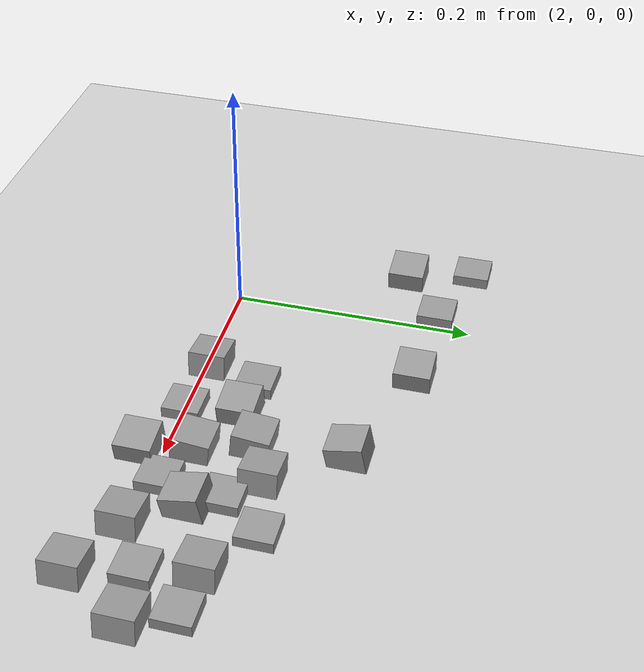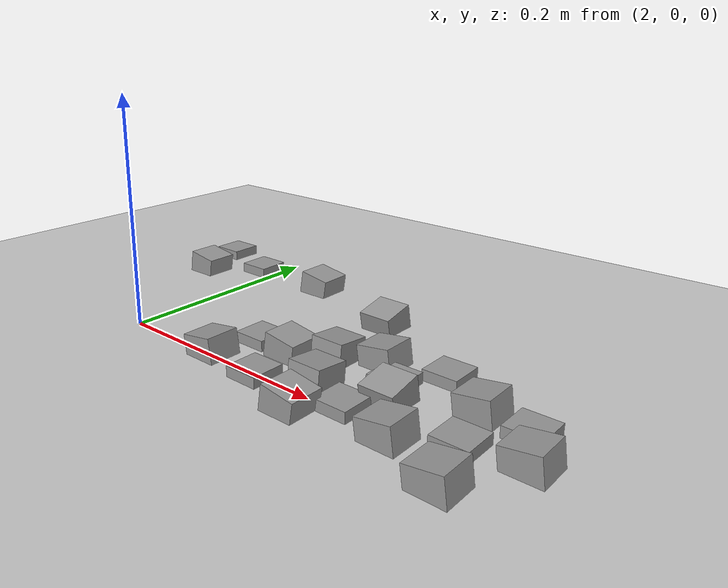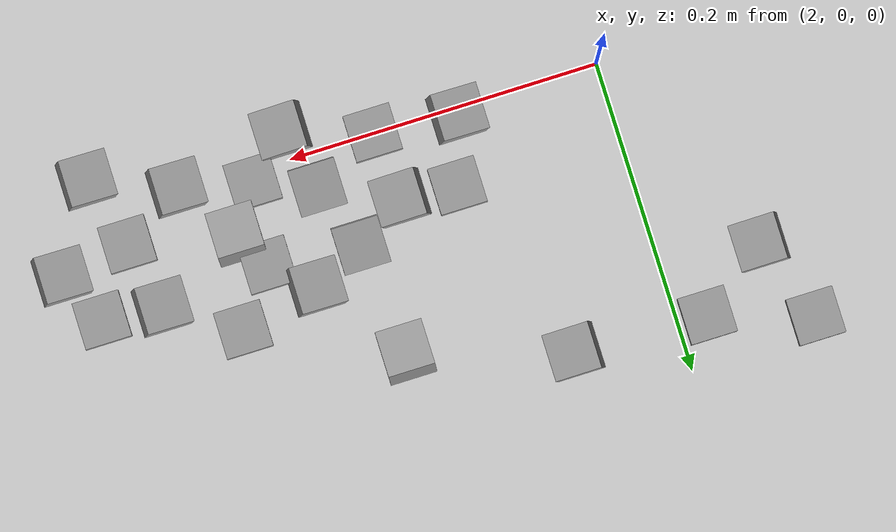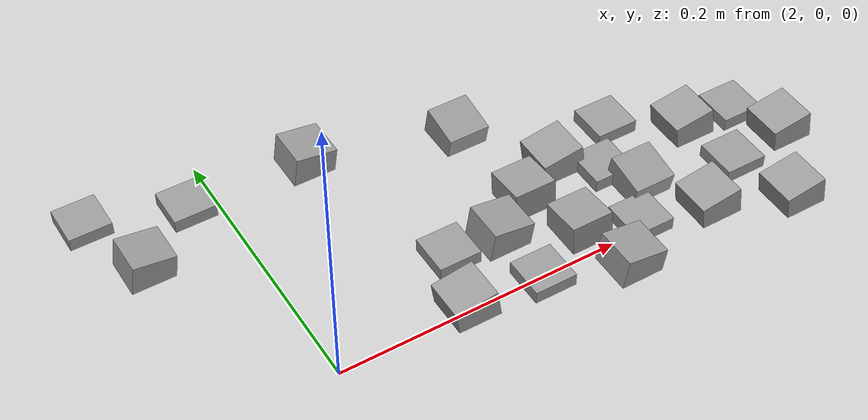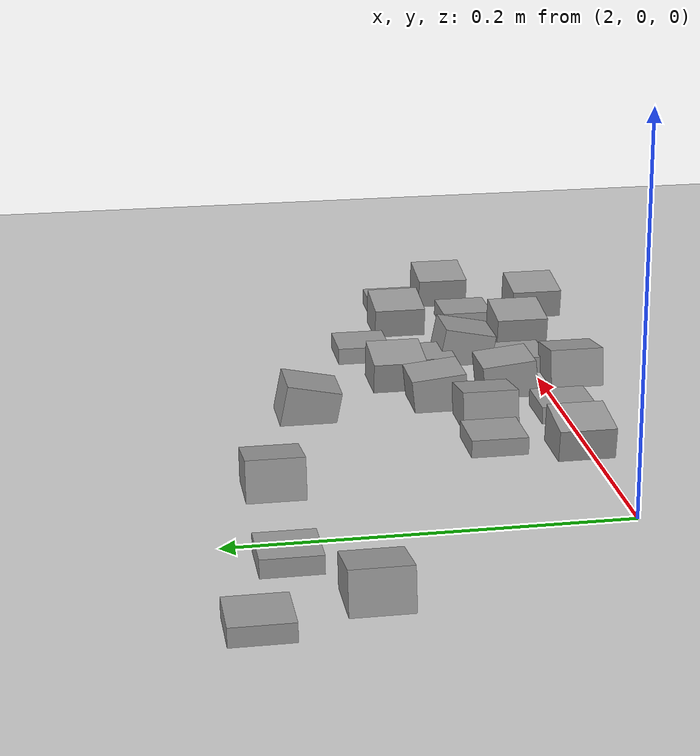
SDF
<sdf version="1.7">
 <world name="default">
  <model name="ground_plane">
   <static>1</static>
   <link name="link">
    <collision name="collision">
     <geometry><plane><normal>0 0 1</normal><size>100 100</size></plane></geometry>
     <surface><friction><ode><mu>100</mu><mu2>50</mu2></ode></friction></surface>
    </collision>
    <visual name="visual">
     <cast_shadows>0</cast_shadows>
     <geometry><plane><normal>0 0 1</normal><size>100 100</size></plane></geometry>
     <material>
      <script><uri>file://media/materials/scripts/gazebo.material</uri><name>Gazebo/Grey</name></script>
     </material>
    </visual>
   </link>
  </model>
  <model name="stone_road_3">
   <link name="link_0_clone_12">
    <inertial>
     <mass>1</mass>
     <inertia>
      <ixx>0.166667</ixx>
      <ixy>0</ixy>
      <ixz>0</ixz>
      <iyy>0.166667</iyy>
      <iyz>0</iyz>
      <izz>0.166667</izz>
     </inertia>
    </inertial>
    <pose>0.142624 -0.262715 0.003778 0.2 -0 0</pose>
    <kinematic>1</kinematic>
    <visual name="visual">
     <geometry><box><size>0.03 0.03 0.03</size></box></geometry>
     <material>
      <lighting>1</lighting>
      <script><uri>file://media/materials/scripts/gazebo.material</uri><name>Gazebo/Grey</name></script>
      <shader type="pixel"><normal_map>__default__</normal_map></shader>
      <ambient>0.3 0.3 0.3 1</ambient>
      <diffuse>0.7 0.7 0.7 1</diffuse>
      <specular>0.01 0.01 0.01 1</specular>
      <emissive>0 0 0 1</emissive>
     </material>
    </visual>
    <collision name="collision">
     <geometry><box><size>0.03 0.03 0.03</size></box></geometry>
     <surface>
      <friction>
       <ode><mu>1</mu><mu2>1</mu2><fdir1>0 0 0</fdir1><slip1>0</slip1><slip2>0</slip2></ode>
       <torsional>
        <coefficient>1</coefficient>
        <patch_radius>0</patch_radius>
        <surface_radius>0</surface_radius>
        <use_patch_radius>1</use_patch_radius>
        <ode><slip>0</slip></ode>
       </torsional>
      </friction>
      <bounce><restitution_coefficient>0</restitution_coefficient><threshold>1e+06</threshold></bounce>
      <contact>
       <collide_without_contact>0</collide_without_contact>
       <collide_without_contact_bitmask>1</collide_without_contact_bitmask>
       <collide_bitmask>1</collide_bitmask>
       <ode>
        <soft_cfm>0</soft_cfm>
        <soft_erp>0.2</soft_erp>
        <kp>1e+13</kp>
        <kd>1</kd>
        <max_vel>0.01</max_vel>
        <min_depth>0</min_depth>
       </ode>
       <bullet>
        <split_impulse>1</split_impulse>
        <split_impulse_penetration_threshold>-0.01</split_impulse_penetration_threshold>
        <soft_cfm>0</soft_cfm>
        <soft_erp>0.2</soft_erp>
        <kp>1e+13</kp>
        <kd>1</kd>
       </bullet>
      </contact>
     </surface>
    </collision>
   </link>
   <link name="link_0_clone_2_clone_2_clone_13_clone_clone_16_clone_28">
    <inertial>
     <mass>1</mass>
     <inertia>
      <ixx>0.166667</ixx>
      <ixy>0</ixy>
      <ixz>0</ixz>
      <iyy>0.166667</iyy>
      <iyz>0</iyz>
      <izz>0.166667</izz>
     </inertia>
    </inertial>
    <pose>-0.10708 -0.209042 -0.006222 0 -0 0</pose>
    <kinematic>1</kinematic>
    <visual name="visual">
     <geometry><box><size>0.03 0.03 0.03</size></box></geometry>
     <material>
      <lighting>1</lighting>
      <script><uri>file://media/materials/scripts/gazebo.material</uri><name>Gazebo/Grey</name></script>
      <shader type="pixel"><normal_map>__default__</normal_map></shader>
      <ambient>0.3 0.3 0.3 1</ambient>
      <diffuse>0.7 0.7 0.7 1</diffuse>
      <specular>0.01 0.01 0.01 1</specular>
      <emissive>0 0 0 1</emissive>
     </material>
    </visual>
    <collision name="collision">
     <geometry><box><size>0.03 0.03 0.03</size></box></geometry>
     <surface>
      <friction>
       <ode><mu>1</mu><mu2>1</mu2><fdir1>0 0 0</fdir1><slip1>0</slip1><slip2>0</slip2></ode>
       <torsional>
        <coefficient>1</coefficient>
        <patch_radius>0</patch_radius>
        <surface_radius>0</surface_radius>
        <use_patch_radius>1</use_patch_radius>
        <ode><slip>0</slip></ode>
       </torsional>
      </friction>
      <bounce><restitution_coefficient>0</restitution_coefficient><threshold>1e+06</threshold></bounce>
      <contact>
       <collide_without_contact>0</collide_without_contact>
       <collide_without_contact_bitmask>1</collide_without_contact_bitmask>
       <collide_bitmask>1</collide_bitmask>
       <ode>
        <soft_cfm>0</soft_cfm>
        <soft_erp>0.2</soft_erp>
        <kp>1e+13</kp>
        <kd>1</kd>
        <max_vel>0.01</max_vel>
        <min_depth>0</min_depth>
       </ode>
       <bullet>
        <split_impulse>1</split_impulse>
        <split_impulse_penetration_threshold>-0.01</split_impulse_penetration_threshold>
        <soft_cfm>0</soft_cfm>
        <soft_erp>0.2</soft_erp>
        <kp>1e+13</kp>
        <kd>1</kd>
       </bullet>
      </contact>
     </surface>
    </collision>
   </link>
   <link name="link_0_clone_2_clone_2_clone_13_clone_clone_16_clone_29">
    <inertial>
     <mass>1</mass>
     <inertia>
      <ixx>0.166667</ixx>
      <ixy>0</ixy>
      <ixz>0</ixz>
      <iyy>0.166667</iyy>
      <iyz>0</iyz>
      <izz>0.166667</izz>
     </inertia>
    </inertial>
    <pose>-0.042964 -0.229632 -0.006222 0 -0 0</pose>
    <kinematic>1</kinematic>
    <visual name="visual">
     <geometry><box><size>0.03 0.03 0.03</size></box></geometry>
     <material>
      <lighting>1</lighting>
      <script><uri>file://media/materials/scripts/gazebo.material</uri><name>Gazebo/Grey</name></script>
      <shader type="pixel"><normal_map>__default__</normal_map></shader>
      <ambient>0.3 0.3 0.3 1</ambient>
      <diffuse>0.7 0.7 0.7 1</diffuse>
      <specular>0.01 0.01 0.01 1</specular>
      <emissive>0 0 0 1</emissive>
     </material>
    </visual>
    <collision name="collision">
     <geometry><box><size>0.03 0.03 0.03</size></box></geometry>
     <surface>
      <friction>
       <ode><mu>1</mu><mu2>1</mu2><fdir1>0 0 0</fdir1><slip1>0</slip1><slip2>0</slip2></ode>
       <torsional>
        <coefficient>1</coefficient>
        <patch_radius>0</patch_radius>
        <surface_radius>0</surface_radius>
        <use_patch_radius>1</use_patch_radius>
        <ode><slip>0</slip></ode>
       </torsional>
      </friction>
      <bounce><restitution_coefficient>0</restitution_coefficient><threshold>1e+06</threshold></bounce>
      <contact>
       <collide_without_contact>0</collide_without_contact>
       <collide_without_contact_bitmask>1</collide_without_contact_bitmask>
       <collide_bitmask>1</collide_bitmask>
       <ode>
        <soft_cfm>0</soft_cfm>
        <soft_erp>0.2</soft_erp>
        <kp>1e+13</kp>
        <kd>1</kd>
        <max_vel>0.01</max_vel>
        <min_depth>0</min_depth>
       </ode>
       <bullet>
        <split_impulse>1</split_impulse>
        <split_impulse_penetration_threshold>-0.01</split_impulse_penetration_threshold>
        <soft_cfm>0</soft_cfm>
        <soft_erp>0.2</soft_erp>
        <kp>1e+13</kp>
        <kd>1</kd>
       </bullet>
      </contact>
     </surface>
    </collision>
   </link>
   <link name="link_0_clone_2_clone_6">
    <inertial>
     <mass>1</mass>
     <inertia>
      <ixx>0.166667</ixx>
      <ixy>0</ixy>
      <ixz>0</ixz>
      <iyy>0.166667</iyy>
      <iyz>0</iyz>
      <izz>0.166667</izz>
     </inertia>
    </inertial>
    <pose>-0.087859 -0.263184 0.003778 0 0.15 0</pose>
    <kinematic>1</kinematic>
    <visual name="visual">
     <geometry><box><size>0.03 0.03 0.03</size></box></geometry>
     <material>
      <lighting>1</lighting>
      <script><uri>file://media/materials/scripts/gazebo.material</uri><name>Gazebo/Grey</name></script>
      <shader type="pixel"><normal_map>__default__</normal_map></shader>
      <ambient>0.3 0.3 0.3 1</ambient>
      <diffuse>0.7 0.7 0.7 1</diffuse>
      <specular>0.01 0.01 0.01 1</specular>
      <emissive>0 0 0 1</emissive>
     </material>
    </visual>
    <collision name="collision">
     <geometry><box><size>0.03 0.03 0.03</size></box></geometry>
     <surface>
      <friction>
       <ode><mu>1</mu><mu2>1</mu2><fdir1>0 0 0</fdir1><slip1>0</slip1><slip2>0</slip2></ode>
       <torsional>
        <coefficient>1</coefficient>
        <patch_radius>0</patch_radius>
        <surface_radius>0</surface_radius>
        <use_patch_radius>1</use_patch_radius>
        <ode><slip>0</slip></ode>
       </torsional>
      </friction>
      <bounce><restitution_coefficient>0</restitution_coefficient><threshold>1e+06</threshold></bounce>
      <contact>
       <collide_without_contact>0</collide_without_contact>
       <collide_without_contact_bitmask>1</collide_without_contact_bitmask>
       <collide_bitmask>1</collide_bitmask>
       <ode>
        <soft_cfm>0</soft_cfm>
        <soft_erp>0.2</soft_erp>
        <kp>1e+13</kp>
        <kd>1</kd>
        <max_vel>0.01</max_vel>
        <min_depth>0</min_depth>
       </ode>
       <bullet>
        <split_impulse>1</split_impulse>
        <split_impulse_penetration_threshold>-0.01</split_impulse_penetration_threshold>
        <soft_cfm>0</soft_cfm>
        <soft_erp>0.2</soft_erp>
        <kp>1e+13</kp>
        <kd>1</kd>
       </bullet>
      </contact>
     </surface>
    </collision>
   </link>
   <link name="link_0_clone_2_clone_7">
    <inertial>
     <mass>1</mass>
     <inertia>
      <ixx>0.166667</ixx>
      <ixy>0</ixy>
      <ixz>0</ixz>
      <iyy>0.166667</iyy>
      <iyz>0</iyz>
      <izz>0.166667</izz>
     </inertia>
    </inertial>
    <pose>0.04255 -0.232691 0.003778 0 0.15 0</pose>
    <kinematic>1</kinematic>
    <visual name="visual">
     <geometry><box><size>0.03 0.03 0.03</size></box></geometry>
     <material>
      <lighting>1</lighting>
      <script><uri>file://media/materials/scripts/gazebo.material</uri><name>Gazebo/Grey</name></script>
      <shader type="pixel"><normal_map>__default__</normal_map></shader>
      <ambient>0.3 0.3 0.3 1</ambient>
      <diffuse>0.7 0.7 0.7 1</diffuse>
      <specular>0.01 0.01 0.01 1</specular>
      <emissive>0 0 0 1</emissive>
     </material>
    </visual>
    <collision name="collision">
     <geometry><box><size>0.03 0.03 0.03</size></box></geometry>
     <surface>
      <friction>
       <ode><mu>1</mu><mu2>1</mu2><fdir1>0 0 0</fdir1><slip1>0</slip1><slip2>0</slip2></ode>
       <torsional>
        <coefficient>1</coefficient>
        <patch_radius>0</patch_radius>
        <surface_radius>0</surface_radius>
        <use_patch_radius>1</use_patch_radius>
        <ode><slip>0</slip></ode>
       </torsional>
      </friction>
      <bounce><restitution_coefficient>0</restitution_coefficient><threshold>1e+06</threshold></bounce>
      <contact>
       <collide_without_contact>0</collide_without_contact>
       <collide_without_contact_bitmask>1</collide_without_contact_bitmask>
       <collide_bitmask>1</collide_bitmask>
       <ode>
        <soft_cfm>0</soft_cfm>
        <soft_erp>0.2</soft_erp>
        <kp>1e+13</kp>
        <kd>1</kd>
        <max_vel>0.01</max_vel>
        <min_depth>0</min_depth>
       </ode>
       <bullet>
        <split_impulse>1</split_impulse>
        <split_impulse_penetration_threshold>-0.01</split_impulse_penetration_threshold>
        <soft_cfm>0</soft_cfm>
        <soft_erp>0.2</soft_erp>
        <kp>1e+13</kp>
        <kd>1</kd>
       </bullet>
      </contact>
     </surface>
    </collision>
   </link>
   <static>0</static>
   <pose>2.02404 0.399702 -0 0 -0 0</pose>
  </model>
  <model name="stone_road_4">
   <link name="link_0_clone_10">
    <inertial>
     <mass>1</mass>
     <inertia>
      <ixx>0.166667</ixx>
      <ixy>0</ixy>
      <ixz>0</ixz>
      <iyy>0.166667</iyy>
      <iyz>0</iyz>
      <izz>0.166667</izz>
     </inertia>
    </inertial>
    <pose>-0.01295 0.17123 0.003778 0.2 -0 0</pose>
    <kinematic>1</kinematic>
    <visual name="visual">
     <geometry><box><size>0.03 0.03 0.03</size></box></geometry>
     <material>
      <lighting>1</lighting>
      <script><uri>file://media/materials/scripts/gazebo.material</uri><name>Gazebo/Grey</name></script>
      <shader type="pixel"><normal_map>__default__</normal_map></shader>
      <ambient>0.3 0.3 0.3 1</ambient>
      <diffuse>0.7 0.7 0.7 1</diffuse>
      <specular>0.01 0.01 0.01 1</specular>
      <emissive>0 0 0 1</emissive>
     </material>
    </visual>
    <collision name="collision">
     <geometry><box><size>0.03 0.03 0.03</size></box></geometry>
     <surface>
      <friction>
       <ode><mu>1</mu><mu2>1</mu2><fdir1>0 0 0</fdir1><slip1>0</slip1><slip2>0</slip2></ode>
       <torsional>
        <coefficient>1</coefficient>
        <patch_radius>0</patch_radius>
        <surface_radius>0</surface_radius>
        <use_patch_radius>1</use_patch_radius>
        <ode><slip>0</slip></ode>
       </torsional>
      </friction>
      <bounce><restitution_coefficient>0</restitution_coefficient><threshold>1e+06</threshold></bounce>
      <contact>
       <collide_without_contact>0</collide_without_contact>
       <collide_without_contact_bitmask>1</collide_without_contact_bitmask>
       <collide_bitmask>1</collide_bitmask>
       <ode>
        <soft_cfm>0</soft_cfm>
        <soft_erp>0.2</soft_erp>
        <kp>1e+13</kp>
        <kd>1</kd>
        <max_vel>0.01</max_vel>
        <min_depth>0</min_depth>
       </ode>
       <bullet>
        <split_impulse>1</split_impulse>
        <split_impulse_penetration_threshold>-0.01</split_impulse_penetration_threshold>
        <soft_cfm>0</soft_cfm>
        <soft_erp>0.2</soft_erp>
        <kp>1e+13</kp>
        <kd>1</kd>
       </bullet>
      </contact>
     </surface>
    </collision>
   </link>
   <link name="link_0_clone_2_clone_2">
    <inertial>
     <mass>1</mass>
     <inertia>
      <ixx>0.166667</ixx>
      <ixy>0</ixy>
      <ixz>0</ixz>
      <iyy>0.166667</iyy>
      <iyz>0</iyz>
      <izz>0.166667</izz>
     </inertia>
    </inertial>
    <pose>0.066563 0.110568 0.003778 0 -0.15 0</pose>
    <kinematic>1</kinematic>
    <visual name="visual">
     <geometry><box><size>0.03 0.03 0.03</size></box></geometry>
     <material>
      <lighting>1</lighting>
      <script><uri>file://media/materials/scripts/gazebo.material</uri><name>Gazebo/Grey</name></script>
      <shader type="pixel"><normal_map>__default__</normal_map></shader>
      <ambient>0.3 0.3 0.3 1</ambient>
      <diffuse>0.7 0.7 0.7 1</diffuse>
      <specular>0.01 0.01 0.01 1</specular>
      <emissive>0 0 0 1</emissive>
     </material>
    </visual>
    <collision name="collision">
     <geometry><box><size>0.03 0.03 0.03</size></box></geometry>
     <surface>
      <friction>
       <ode><mu>1</mu><mu2>1</mu2><fdir1>0 0 0</fdir1><slip1>0</slip1><slip2>0</slip2></ode>
       <torsional>
        <coefficient>1</coefficient>
        <patch_radius>0</patch_radius>
        <surface_radius>0</surface_radius>
        <use_patch_radius>1</use_patch_radius>
        <ode><slip>0</slip></ode>
       </torsional>
      </friction>
      <bounce><restitution_coefficient>0</restitution_coefficient><threshold>1e+06</threshold></bounce>
      <contact>
       <collide_without_contact>0</collide_without_contact>
       <collide_without_contact_bitmask>1</collide_without_contact_bitmask>
       <collide_bitmask>1</collide_bitmask>
       <ode>
        <soft_cfm>0</soft_cfm>
        <soft_erp>0.2</soft_erp>
        <kp>1e+13</kp>
        <kd>1</kd>
        <max_vel>0.01</max_vel>
        <min_depth>0</min_depth>
       </ode>
       <bullet>
        <split_impulse>1</split_impulse>
        <split_impulse_penetration_threshold>-0.01</split_impulse_penetration_threshold>
        <soft_cfm>0</soft_cfm>
        <soft_erp>0.2</soft_erp>
        <kp>1e+13</kp>
        <kd>1</kd>
       </bullet>
      </contact>
     </surface>
    </collision>
   </link>
   <link name="link_0_clone_2_clone_2_clone_10">
    <inertial>
     <mass>1</mass>
     <inertia>
      <ixx>0.166667</ixx>
      <ixy>0</ixy>
      <ixz>0</ixz>
      <iyy>0.166667</iyy>
      <iyz>0</iyz>
      <izz>0.166667</izz>
     </inertia>
    </inertial>
    <pose>0.09869 0.163436 0.003778 0 -0.15 0</pose>
    <kinematic>1</kinematic>
    <visual name="visual">
     <geometry><box><size>0.03 0.03 0.03</size></box></geometry>
     <material>
      <lighting>1</lighting>
      <script><uri>file://media/materials/scripts/gazebo.material</uri><name>Gazebo/Grey</name></script>
      <shader type="pixel"><normal_map>__default__</normal_map></shader>
      <ambient>0.3 0.3 0.3 1</ambient>
      <diffuse>0.7 0.7 0.7 1</diffuse>
      <specular>0.01 0.01 0.01 1</specular>
      <emissive>0 0 0 1</emissive>
     </material>
    </visual>
    <collision name="collision">
     <geometry><box><size>0.03 0.03 0.03</size></box></geometry>
     <surface>
      <friction>
       <ode><mu>1</mu><mu2>1</mu2><fdir1>0 0 0</fdir1><slip1>0</slip1><slip2>0</slip2></ode>
       <torsional>
        <coefficient>1</coefficient>
        <patch_radius>0</patch_radius>
        <surface_radius>0</surface_radius>
        <use_patch_radius>1</use_patch_radius>
        <ode><slip>0</slip></ode>
       </torsional>
      </friction>
      <bounce><restitution_coefficient>0</restitution_coefficient><threshold>1e+06</threshold></bounce>
      <contact>
       <collide_without_contact>0</collide_without_contact>
       <collide_without_contact_bitmask>1</collide_without_contact_bitmask>
       <collide_bitmask>1</collide_bitmask>
       <ode>
        <soft_cfm>0</soft_cfm>
        <soft_erp>0.2</soft_erp>
        <kp>1e+13</kp>
        <kd>1</kd>
        <max_vel>0.01</max_vel>
        <min_depth>0</min_depth>
       </ode>
       <bullet>
        <split_impulse>1</split_impulse>
        <split_impulse_penetration_threshold>-0.01</split_impulse_penetration_threshold>
        <soft_cfm>0</soft_cfm>
        <soft_erp>0.2</soft_erp>
        <kp>1e+13</kp>
        <kd>1</kd>
       </bullet>
      </contact>
     </surface>
    </collision>
   </link>
   <link name="link_0_clone_2_clone_2_clone_11">
    <inertial>
     <mass>1</mass>
     <inertia>
      <ixx>0.166667</ixx>
      <ixy>0</ixy>
      <ixz>0</ixz>
      <iyy>0.166667</iyy>
      <iyz>0</iyz>
      <izz>0.166667</izz>
     </inertia>
    </inertial>
    <pose>-0.050382 0.216558 0.003778 0 -0.15 0</pose>
    <kinematic>1</kinematic>
    <visual name="visual">
     <geometry><box><size>0.03 0.03 0.03</size></box></geometry>
     <material>
      <lighting>1</lighting>
      <script><uri>file://media/materials/scripts/gazebo.material</uri><name>Gazebo/Grey</name></script>
      <shader type="pixel"><normal_map>__default__</normal_map></shader>
      <ambient>0.3 0.3 0.3 1</ambient>
      <diffuse>0.7 0.7 0.7 1</diffuse>
      <specular>0.01 0.01 0.01 1</specular>
      <emissive>0 0 0 1</emissive>
     </material>
    </visual>
    <collision name="collision">
     <geometry><box><size>0.03 0.03 0.03</size></box></geometry>
     <surface>
      <friction>
       <ode><mu>1</mu><mu2>1</mu2><fdir1>0 0 0</fdir1><slip1>0</slip1><slip2>0</slip2></ode>
       <torsional>
        <coefficient>1</coefficient>
        <patch_radius>0</patch_radius>
        <surface_radius>0</surface_radius>
        <use_patch_radius>1</use_patch_radius>
        <ode><slip>0</slip></ode>
       </torsional>
      </friction>
      <bounce><restitution_coefficient>0</restitution_coefficient><threshold>1e+06</threshold></bounce>
      <contact>
       <collide_without_contact>0</collide_without_contact>
       <collide_without_contact_bitmask>1</collide_without_contact_bitmask>
       <collide_bitmask>1</collide_bitmask>
       <ode>
        <soft_cfm>0</soft_cfm>
        <soft_erp>0.2</soft_erp>
        <kp>1e+13</kp>
        <kd>1</kd>
        <max_vel>0.01</max_vel>
        <min_depth>0</min_depth>
       </ode>
       <bullet>
        <split_impulse>1</split_impulse>
        <split_impulse_penetration_threshold>-0.01</split_impulse_penetration_threshold>
        <soft_cfm>0</soft_cfm>
        <soft_erp>0.2</soft_erp>
        <kp>1e+13</kp>
        <kd>1</kd>
       </bullet>
      </contact>
     </surface>
    </collision>
   </link>
   <link name="link_0_clone_2_clone_2_clone_12">
    <inertial>
     <mass>1</mass>
     <inertia>
      <ixx>0.166667</ixx>
      <ixy>0</ixy>
      <ixz>0</ixz>
      <iyy>0.166667</iyy>
      <iyz>0</iyz>
      <izz>0.166667</izz>
     </inertia>
    </inertial>
    <pose>0.044693 0.200081 0.003778 0 -0.15 0</pose>
    <kinematic>1</kinematic>
    <visual name="visual">
     <geometry><box><size>0.03 0.03 0.03</size></box></geometry>
     <material>
      <lighting>1</lighting>
      <script><uri>file://media/materials/scripts/gazebo.material</uri><name>Gazebo/Grey</name></script>
      <shader type="pixel"><normal_map>__default__</normal_map></shader>
      <ambient>0.3 0.3 0.3 1</ambient>
      <diffuse>0.7 0.7 0.7 1</diffuse>
      <specular>0.01 0.01 0.01 1</specular>
      <emissive>0 0 0 1</emissive>
     </material>
    </visual>
    <collision name="collision">
     <geometry><box><size>0.03 0.03 0.03</size></box></geometry>
     <surface>
      <friction>
       <ode><mu>1</mu><mu2>1</mu2><fdir1>0 0 0</fdir1><slip1>0</slip1><slip2>0</slip2></ode>
       <torsional>
        <coefficient>1</coefficient>
        <patch_radius>0</patch_radius>
        <surface_radius>0</surface_radius>
        <use_patch_radius>1</use_patch_radius>
        <ode><slip>0</slip></ode>
       </torsional>
      </friction>
      <bounce><restitution_coefficient>0</restitution_coefficient><threshold>1e+06</threshold></bounce>
      <contact>
       <collide_without_contact>0</collide_without_contact>
       <collide_without_contact_bitmask>1</collide_without_contact_bitmask>
       <collide_bitmask>1</collide_bitmask>
       <ode>
        <soft_cfm>0</soft_cfm>
        <soft_erp>0.2</soft_erp>
        <kp>1e+13</kp>
        <kd>1</kd>
        <max_vel>0.01</max_vel>
        <min_depth>0</min_depth>
       </ode>
       <bullet>
        <split_impulse>1</split_impulse>
        <split_impulse_penetration_threshold>-0.01</split_impulse_penetration_threshold>
        <soft_cfm>0</soft_cfm>
        <soft_erp>0.2</soft_erp>
        <kp>1e+13</kp>
        <kd>1</kd>
       </bullet>
      </contact>
     </surface>
    </collision>
   </link>
   <link name="link_0_clone_2_clone_2_clone_13">
    <inertial>
     <mass>1</mass>
     <inertia>
      <ixx>0.166667</ixx>
      <ixy>0</ixy>
      <ixz>0</ixz>
      <iyy>0.166667</iyy>
      <iyz>0</iyz>
      <izz>0.166667</izz>
     </inertia>
    </inertial>
    <pose>0.014407 0.13189 0.003778 0 -0.15 0</pose>
    <kinematic>1</kinematic>
    <visual name="visual">
     <geometry><box><size>0.03 0.03 0.03</size></box></geometry>
     <material>
      <lighting>1</lighting>
      <script><uri>file://media/materials/scripts/gazebo.material</uri><name>Gazebo/Grey</name></script>
      <shader type="pixel"><normal_map>__default__</normal_map></shader>
      <ambient>0.3 0.3 0.3 1</ambient>
      <diffuse>0.7 0.7 0.7 1</diffuse>
      <specular>0.01 0.01 0.01 1</specular>
      <emissive>0 0 0 1</emissive>
     </material>
    </visual>
    <collision name="collision">
     <geometry><box><size>0.03 0.03 0.03</size></box></geometry>
     <surface>
      <friction>
       <ode><mu>1</mu><mu2>1</mu2><fdir1>0 0 0</fdir1><slip1>0</slip1><slip2>0</slip2></ode>
       <torsional>
        <coefficient>1</coefficient>
        <patch_radius>0</patch_radius>
        <surface_radius>0</surface_radius>
        <use_patch_radius>1</use_patch_radius>
        <ode><slip>0</slip></ode>
       </torsional>
      </friction>
      <bounce><restitution_coefficient>0</restitution_coefficient><threshold>1e+06</threshold></bounce>
      <contact>
       <collide_without_contact>0</collide_without_contact>
       <collide_without_contact_bitmask>1</collide_without_contact_bitmask>
       <collide_bitmask>1</collide_bitmask>
       <ode>
        <soft_cfm>0</soft_cfm>
        <soft_erp>0.2</soft_erp>
        <kp>1e+13</kp>
        <kd>1</kd>
        <max_vel>0.01</max_vel>
        <min_depth>0</min_depth>
       </ode>
       <bullet>
        <split_impulse>1</split_impulse>
        <split_impulse_penetration_threshold>-0.01</split_impulse_penetration_threshold>
        <soft_cfm>0</soft_cfm>
        <soft_erp>0.2</soft_erp>
        <kp>1e+13</kp>
        <kd>1</kd>
       </bullet>
      </contact>
     </surface>
    </collision>
   </link>
   <link name="link_0_clone_2_clone_2_clone_13_clone_clone_13">
    <inertial>
     <mass>1</mass>
     <inertia>
      <ixx>0.166667</ixx>
      <ixy>0</ixy>
      <ixz>0</ixz>
      <iyy>0.166667</iyy>
      <iyz>0</iyz>
      <izz>0.166667</izz>
     </inertia>
    </inertial>
    <pose>-0.069861 0.157394 0.003778 -0.1 0 0</pose>
    <kinematic>1</kinematic>
    <visual name="visual">
     <geometry><box><size>0.03 0.03 0.03</size></box></geometry>
     <material>
      <lighting>1</lighting>
      <script><uri>file://media/materials/scripts/gazebo.material</uri><name>Gazebo/Grey</name></script>
      <shader type="pixel"><normal_map>__default__</normal_map></shader>
      <ambient>0.3 0.3 0.3 1</ambient>
      <diffuse>0.7 0.7 0.7 1</diffuse>
      <specular>0.01 0.01 0.01 1</specular>
      <emissive>0 0 0 1</emissive>
     </material>
    </visual>
    <collision name="collision">
     <geometry><box><size>0.03 0.03 0.03</size></box></geometry>
     <surface>
      <friction>
       <ode><mu>1</mu><mu2>1</mu2><fdir1>0 0 0</fdir1><slip1>0</slip1><slip2>0</slip2></ode>
       <torsional>
        <coefficient>1</coefficient>
        <patch_radius>0</patch_radius>
        <surface_radius>0</surface_radius>
        <use_patch_radius>1</use_patch_radius>
        <ode><slip>0</slip></ode>
       </torsional>
      </friction>
      <bounce><restitution_coefficient>0</restitution_coefficient><threshold>1e+06</threshold></bounce>
      <contact>
       <collide_without_contact>0</collide_without_contact>
       <collide_without_contact_bitmask>1</collide_without_contact_bitmask>
       <collide_bitmask>1</collide_bitmask>
       <ode>
        <soft_cfm>0</soft_cfm>
        <soft_erp>0.2</soft_erp>
        <kp>1e+13</kp>
        <kd>1</kd>
        <max_vel>0.01</max_vel>
        <min_depth>0</min_depth>
       </ode>
       <bullet>
        <split_impulse>1</split_impulse>
        <split_impulse_penetration_threshold>-0.01</split_impulse_penetration_threshold>
        <soft_cfm>0</soft_cfm>
        <soft_erp>0.2</soft_erp>
        <kp>1e+13</kp>
        <kd>1</kd>
       </bullet>
      </contact>
     </surface>
    </collision>
   </link>
   <link name="link_0_clone_2_clone_2_clone_13_clone_clone_15">
    <inertial>
     <mass>1</mass>
     <inertia>
      <ixx>0.166667</ixx>
      <ixy>0</ixy>
      <ixz>0</ixz>
      <iyy>0.166667</iyy>
      <iyz>0</iyz>
      <izz>0.166667</izz>
     </inertia>
    </inertial>
    <pose>-0.084893 0.19984 0.003778 -0.1 0 0</pose>
    <kinematic>1</kinematic>
    <visual name="visual">
     <geometry><box><size>0.03 0.03 0.03</size></box></geometry>
     <material>
      <lighting>1</lighting>
      <script><uri>file://media/materials/scripts/gazebo.material</uri><name>Gazebo/Grey</name></script>
      <shader type="pixel"><normal_map>__default__</normal_map></shader>
      <ambient>0.3 0.3 0.3 1</ambient>
      <diffuse>0.7 0.7 0.7 1</diffuse>
      <specular>0.01 0.01 0.01 1</specular>
      <emissive>0 0 0 1</emissive>
     </material>
    </visual>
    <collision name="collision">
     <geometry><box><size>0.03 0.03 0.03</size></box></geometry>
     <surface>
      <friction>
       <ode><mu>1</mu><mu2>1</mu2><fdir1>0 0 0</fdir1><slip1>0</slip1><slip2>0</slip2></ode>
       <torsional>
        <coefficient>1</coefficient>
        <patch_radius>0</patch_radius>
        <surface_radius>0</surface_radius>
        <use_patch_radius>1</use_patch_radius>
        <ode><slip>0</slip></ode>
       </torsional>
      </friction>
      <bounce><restitution_coefficient>0</restitution_coefficient><threshold>1e+06</threshold></bounce>
      <contact>
       <collide_without_contact>0</collide_without_contact>
       <collide_without_contact_bitmask>1</collide_without_contact_bitmask>
       <collide_bitmask>1</collide_bitmask>
       <ode>
        <soft_cfm>0</soft_cfm>
        <soft_erp>0.2</soft_erp>
        <kp>1e+13</kp>
        <kd>1</kd>
        <max_vel>0.01</max_vel>
        <min_depth>0</min_depth>
       </ode>
       <bullet>
        <split_impulse>1</split_impulse>
        <split_impulse_penetration_threshold>-0.01</split_impulse_penetration_threshold>
        <soft_cfm>0</soft_cfm>
        <soft_erp>0.2</soft_erp>
        <kp>1e+13</kp>
        <kd>1</kd>
       </bullet>
      </contact>
     </surface>
    </collision>
   </link>
   <link name="link_0_clone_2_clone_2_clone_13_clone_clone_16_clone">
    <inertial>
     <mass>1</mass>
     <inertia>
      <ixx>0.166667</ixx>
      <ixy>0</ixy>
      <ixz>0</ixz>
      <iyy>0.166667</iyy>
      <iyz>0</iyz>
      <izz>0.166667</izz>
     </inertia>
    </inertial>
    <pose>0.0535 0.156403 -0.006222 0 -0 0</pose>
    <kinematic>1</kinematic>
    <visual name="visual">
     <geometry><box><size>0.03 0.03 0.03</size></box></geometry>
     <material>
      <lighting>1</lighting>
      <script><uri>file://media/materials/scripts/gazebo.material</uri><name>Gazebo/Grey</name></script>
      <shader type="pixel"><normal_map>__default__</normal_map></shader>
      <ambient>0.3 0.3 0.3 1</ambient>
      <diffuse>0.7 0.7 0.7 1</diffuse>
      <specular>0.01 0.01 0.01 1</specular>
      <emissive>0 0 0 1</emissive>
     </material>
    </visual>
    <collision name="collision">
     <geometry><box><size>0.03 0.03 0.03</size></box></geometry>
     <surface>
      <friction>
       <ode><mu>1</mu><mu2>1</mu2><fdir1>0 0 0</fdir1><slip1>0</slip1><slip2>0</slip2></ode>
       <torsional>
        <coefficient>1</coefficient>
        <patch_radius>0</patch_radius>
        <surface_radius>0</surface_radius>
        <use_patch_radius>1</use_patch_radius>
        <ode><slip>0</slip></ode>
       </torsional>
      </friction>
      <bounce><restitution_coefficient>0</restitution_coefficient><threshold>1e+06</threshold></bounce>
      <contact>
       <collide_without_contact>0</collide_without_contact>
       <collide_without_contact_bitmask>1</collide_without_contact_bitmask>
       <collide_bitmask>1</collide_bitmask>
       <ode>
        <soft_cfm>0</soft_cfm>
        <soft_erp>0.2</soft_erp>
        <kp>1e+13</kp>
        <kd>1</kd>
        <max_vel>0.01</max_vel>
        <min_depth>0</min_depth>
       </ode>
       <bullet>
        <split_impulse>1</split_impulse>
        <split_impulse_penetration_threshold>-0.01</split_impulse_penetration_threshold>
        <soft_cfm>0</soft_cfm>
        <soft_erp>0.2</soft_erp>
        <kp>1e+13</kp>
        <kd>1</kd>
       </bullet>
      </contact>
     </surface>
    </collision>
   </link>
   <link name="link_0_clone_2_clone_2_clone_13_clone_clone_16_clone_21">
    <inertial>
     <mass>1</mass>
     <inertia>
      <ixx>0.166667</ixx>
      <ixy>0</ixy>
      <ixz>0</ixz>
      <iyy>0.166667</iyy>
      <iyz>0</iyz>
      <izz>0.166667</izz>
     </inertia>
    </inertial>
    <pose>-0.032398 0.142589 -0.006222 0 -0 0</pose>
    <kinematic>1</kinematic>
    <visual name="visual">
     <geometry><box><size>0.03 0.03 0.03</size></box></geometry>
     <material>
      <lighting>1</lighting>
      <script><uri>file://media/materials/scripts/gazebo.material</uri><name>Gazebo/Grey</name></script>
      <shader type="pixel"><normal_map>__default__</normal_map></shader>
      <ambient>0.3 0.3 0.3 1</ambient>
      <diffuse>0.7 0.7 0.7 1</diffuse>
      <specular>0.01 0.01 0.01 1</specular>
      <emissive>0 0 0 1</emissive>
     </material>
    </visual>
    <collision name="collision">
     <geometry><box><size>0.03 0.03 0.03</size></box></geometry>
     <surface>
      <friction>
       <ode><mu>1</mu><mu2>1</mu2><fdir1>0 0 0</fdir1><slip1>0</slip1><slip2>0</slip2></ode>
       <torsional>
        <coefficient>1</coefficient>
        <patch_radius>0</patch_radius>
        <surface_radius>0</surface_radius>
        <use_patch_radius>1</use_patch_radius>
        <ode><slip>0</slip></ode>
       </torsional>
      </friction>
      <bounce><restitution_coefficient>0</restitution_coefficient><threshold>1e+06</threshold></bounce>
      <contact>
       <collide_without_contact>0</collide_without_contact>
       <collide_without_contact_bitmask>1</collide_without_contact_bitmask>
       <collide_bitmask>1</collide_bitmask>
       <ode>
        <soft_cfm>0</soft_cfm>
        <soft_erp>0.2</soft_erp>
        <kp>1e+13</kp>
        <kd>1</kd>
        <max_vel>0.01</max_vel>
        <min_depth>0</min_depth>
       </ode>
       <bullet>
        <split_impulse>1</split_impulse>
        <split_impulse_penetration_threshold>-0.01</split_impulse_penetration_threshold>
        <soft_cfm>0</soft_cfm>
        <soft_erp>0.2</soft_erp>
        <kp>1e+13</kp>
        <kd>1</kd>
       </bullet>
      </contact>
     </surface>
    </collision>
   </link>
   <link name="link_0_clone_2_clone_2_clone_13_clone_clone_16_clone_22">
    <inertial>
     <mass>1</mass>
     <inertia>
      <ixx>0.166667</ixx>
      <ixy>0</ixy>
      <ixz>0</ixz>
      <iyy>0.166667</iyy>
      <iyz>0</iyz>
      <izz>0.166667</izz>
     </inertia>
    </inertial>
    <pose>-0.025872 0.194724 -0.006222 0 -0 0</pose>
    <kinematic>1</kinematic>
    <visual name="visual">
     <geometry><box><size>0.03 0.03 0.03</size></box></geometry>
     <material>
      <lighting>1</lighting>
      <script><uri>file://media/materials/scripts/gazebo.material</uri><name>Gazebo/Grey</name></script>
      <shader type="pixel"><normal_map>__default__</normal_map></shader>
      <ambient>0.3 0.3 0.3 1</ambient>
      <diffuse>0.7 0.7 0.7 1</diffuse>
      <specular>0.01 0.01 0.01 1</specular>
      <emissive>0 0 0 1</emissive>
     </material>
    </visual>
    <collision name="collision">
     <geometry><box><size>0.03 0.03 0.03</size></box></geometry>
     <surface>
      <friction>
       <ode><mu>1</mu><mu2>1</mu2><fdir1>0 0 0</fdir1><slip1>0</slip1><slip2>0</slip2></ode>
       <torsional>
        <coefficient>1</coefficient>
        <patch_radius>0</patch_radius>
        <surface_radius>0</surface_radius>
        <use_patch_radius>1</use_patch_radius>
        <ode><slip>0</slip></ode>
       </torsional>
      </friction>
      <bounce><restitution_coefficient>0</restitution_coefficient><threshold>1e+06</threshold></bounce>
      <contact>
       <collide_without_contact>0</collide_without_contact>
       <collide_without_contact_bitmask>1</collide_without_contact_bitmask>
       <collide_bitmask>1</collide_bitmask>
       <ode>
        <soft_cfm>0</soft_cfm>
        <soft_erp>0.2</soft_erp>
        <kp>1e+13</kp>
        <kd>1</kd>
        <max_vel>0.01</max_vel>
        <min_depth>0</min_depth>
       </ode>
       <bullet>
        <split_impulse>1</split_impulse>
        <split_impulse_penetration_threshold>-0.01</split_impulse_penetration_threshold>
        <soft_cfm>0</soft_cfm>
        <soft_erp>0.2</soft_erp>
        <kp>1e+13</kp>
        <kd>1</kd>
       </bullet>
      </contact>
     </surface>
    </collision>
   </link>
   <link name="link_0_clone_2_clone_2_clone_13_clone_clone_16_clone_23">
    <inertial>
     <mass>1</mass>
     <inertia>
      <ixx>0.166667</ixx>
      <ixy>0</ixy>
      <ixz>0</ixz>
      <iyy>0.166667</iyy>
      <iyz>0</iyz>
      <izz>0.166667</izz>
     </inertia>
    </inertial>
    <pose>0.000385 0.228664 -0.006222 0 -0 0</pose>
    <kinematic>1</kinematic>
    <visual name="visual">
     <geometry><box><size>0.03 0.03 0.03</size></box></geometry>
     <material>
      <lighting>1</lighting>
      <script><uri>file://media/materials/scripts/gazebo.material</uri><name>Gazebo/Grey</name></script>
      <shader type="pixel"><normal_map>__default__</normal_map></shader>
      <ambient>0.3 0.3 0.3 1</ambient>
      <diffuse>0.7 0.7 0.7 1</diffuse>
      <specular>0.01 0.01 0.01 1</specular>
      <emissive>0 0 0 1</emissive>
     </material>
    </visual>
    <collision name="collision">
     <geometry><box><size>0.03 0.03 0.03</size></box></geometry>
     <surface>
      <friction>
       <ode><mu>1</mu><mu2>1</mu2><fdir1>0 0 0</fdir1><slip1>0</slip1><slip2>0</slip2></ode>
       <torsional>
        <coefficient>1</coefficient>
        <patch_radius>0</patch_radius>
        <surface_radius>0</surface_radius>
        <use_patch_radius>1</use_patch_radius>
        <ode><slip>0</slip></ode>
       </torsional>
      </friction>
      <bounce><restitution_coefficient>0</restitution_coefficient><threshold>1e+06</threshold></bounce>
      <contact>
       <collide_without_contact>0</collide_without_contact>
       <collide_without_contact_bitmask>1</collide_without_contact_bitmask>
       <collide_bitmask>1</collide_bitmask>
       <ode>
        <soft_cfm>0</soft_cfm>
        <soft_erp>0.2</soft_erp>
        <kp>1e+13</kp>
        <kd>1</kd>
        <max_vel>0.01</max_vel>
        <min_depth>0</min_depth>
       </ode>
       <bullet>
        <split_impulse>1</split_impulse>
        <split_impulse_penetration_threshold>-0.01</split_impulse_penetration_threshold>
        <soft_cfm>0</soft_cfm>
        <soft_erp>0.2</soft_erp>
        <kp>1e+13</kp>
        <kd>1</kd>
       </bullet>
      </contact>
     </surface>
    </collision>
   </link>
   <link name="link_0_clone_2_clone_2_clone_13_clone_clone_16_clone_24">
    <inertial>
     <mass>1</mass>
     <inertia>
      <ixx>0.166667</ixx>
      <ixy>0</ixy>
      <ixz>0</ixz>
      <iyy>0.166667</iyy>
      <iyz>0</iyz>
      <izz>0.166667</izz>
     </inertia>
    </inertial>
    <pose>0.08246 0.196776 -0.006222 0 -0 0</pose>
    <kinematic>1</kinematic>
    <visual name="visual">
     <geometry><box><size>0.03 0.03 0.03</size></box></geometry>
     <material>
      <lighting>1</lighting>
      <script><uri>file://media/materials/scripts/gazebo.material</uri><name>Gazebo/Grey</name></script>
      <shader type="pixel"><normal_map>__default__</normal_map></shader>
      <ambient>0.3 0.3 0.3 1</ambient>
      <diffuse>0.7 0.7 0.7 1</diffuse>
      <specular>0.01 0.01 0.01 1</specular>
      <emissive>0 0 0 1</emissive>
     </material>
    </visual>
    <collision name="collision">
     <geometry><box><size>0.03 0.03 0.03</size></box></geometry>
     <surface>
      <friction>
       <ode><mu>1</mu><mu2>1</mu2><fdir1>0 0 0</fdir1><slip1>0</slip1><slip2>0</slip2></ode>
       <torsional>
        <coefficient>1</coefficient>
        <patch_radius>0</patch_radius>
        <surface_radius>0</surface_radius>
        <use_patch_radius>1</use_patch_radius>
        <ode><slip>0</slip></ode>
       </torsional>
      </friction>
      <bounce><restitution_coefficient>0</restitution_coefficient><threshold>1e+06</threshold></bounce>
      <contact>
       <collide_without_contact>0</collide_without_contact>
       <collide_without_contact_bitmask>1</collide_without_contact_bitmask>
       <collide_bitmask>1</collide_bitmask>
       <ode>
        <soft_cfm>0</soft_cfm>
        <soft_erp>0.2</soft_erp>
        <kp>1e+13</kp>
        <kd>1</kd>
        <max_vel>0.01</max_vel>
        <min_depth>0</min_depth>
       </ode>
       <bullet>
        <split_impulse>1</split_impulse>
        <split_impulse_penetration_threshold>-0.01</split_impulse_penetration_threshold>
        <soft_cfm>0</soft_cfm>
        <soft_erp>0.2</soft_erp>
        <kp>1e+13</kp>
        <kd>1</kd>
       </bullet>
      </contact>
     </surface>
    </collision>
   </link>
   <link name="link_0_clone_2_clone_2_clone_13_clone_clone_16_clone_25">
    <inertial>
     <mass>1</mass>
     <inertia>
      <ixx>0.166667</ixx>
      <ixy>0</ixy>
      <ixz>0</ixz>
      <iyy>0.166667</iyy>
      <iyz>0</iyz>
      <izz>0.166667</izz>
     </inertia>
    </inertial>
    <pose>-0.15326 0.182661 -0.006222 0 -0 0</pose>
    <kinematic>1</kinematic>
    <visual name="visual">
     <geometry><box><size>0.03 0.03 0.03</size></box></geometry>
     <material>
      <lighting>1</lighting>
      <script><uri>file://media/materials/scripts/gazebo.material</uri><name>Gazebo/Grey</name></script>
      <shader type="pixel"><normal_map>__default__</normal_map></shader>
      <ambient>0.3 0.3 0.3 1</ambient>
      <diffuse>0.7 0.7 0.7 1</diffuse>
      <specular>0.01 0.01 0.01 1</specular>
      <emissive>0 0 0 1</emissive>
     </material>
    </visual>
    <collision name="collision">
     <geometry><box><size>0.03 0.03 0.03</size></box></geometry>
     <surface>
      <friction>
       <ode><mu>1</mu><mu2>1</mu2><fdir1>0 0 0</fdir1><slip1>0</slip1><slip2>0</slip2></ode>
       <torsional>
        <coefficient>1</coefficient>
        <patch_radius>0</patch_radius>
        <surface_radius>0</surface_radius>
        <use_patch_radius>1</use_patch_radius>
        <ode><slip>0</slip></ode>
       </torsional>
      </friction>
      <bounce><restitution_coefficient>0</restitution_coefficient><threshold>1e+06</threshold></bounce>
      <contact>
       <collide_without_contact>0</collide_without_contact>
       <collide_without_contact_bitmask>1</collide_without_contact_bitmask>
       <collide_bitmask>1</collide_bitmask>
       <ode>
        <soft_cfm>0</soft_cfm>
        <soft_erp>0.2</soft_erp>
        <kp>1e+13</kp>
        <kd>1</kd>
        <max_vel>0.01</max_vel>
        <min_depth>0</min_depth>
       </ode>
       <bullet>
        <split_impulse>1</split_impulse>
        <split_impulse_penetration_threshold>-0.01</split_impulse_penetration_threshold>
        <soft_cfm>0</soft_cfm>
        <soft_erp>0.2</soft_erp>
        <kp>1e+13</kp>
        <kd>1</kd>
       </bullet>
      </contact>
     </surface>
    </collision>
   </link>
   <link name="link_0_clone_2_clone_2_clone_13_clone_clone_16_clone_3">
    <inertial>
     <mass>1</mass>
     <inertia>
      <ixx>0.166667</ixx>
      <ixy>0</ixy>
      <ixz>0</ixz>
      <iyy>0.166667</iyy>
      <iyz>0</iyz>
      <izz>0.166667</izz>
     </inertia>
    </inertial>
    <pose>-0.112739 0.135576 -0.006222 0 -0 0</pose>
    <kinematic>1</kinematic>
    <visual name="visual">
     <geometry><box><size>0.03 0.03 0.03</size></box></geometry>
     <material>
      <lighting>1</lighting>
      <script><uri>file://media/materials/scripts/gazebo.material</uri><name>Gazebo/Grey</name></script>
      <shader type="pixel"><normal_map>__default__</normal_map></shader>
      <ambient>0.3 0.3 0.3 1</ambient>
      <diffuse>0.7 0.7 0.7 1</diffuse>
      <specular>0.01 0.01 0.01 1</specular>
      <emissive>0 0 0 1</emissive>
     </material>
    </visual>
    <collision name="collision">
     <geometry><box><size>0.03 0.03 0.03</size></box></geometry>
     <surface>
      <friction>
       <ode><mu>1</mu><mu2>1</mu2><fdir1>0 0 0</fdir1><slip1>0</slip1><slip2>0</slip2></ode>
       <torsional>
        <coefficient>1</coefficient>
        <patch_radius>0</patch_radius>
        <surface_radius>0</surface_radius>
        <use_patch_radius>1</use_patch_radius>
        <ode><slip>0</slip></ode>
       </torsional>
      </friction>
      <bounce><restitution_coefficient>0</restitution_coefficient><threshold>1e+06</threshold></bounce>
      <contact>
       <collide_without_contact>0</collide_without_contact>
       <collide_without_contact_bitmask>1</collide_without_contact_bitmask>
       <collide_bitmask>1</collide_bitmask>
       <ode>
        <soft_cfm>0</soft_cfm>
        <soft_erp>0.2</soft_erp>
        <kp>1e+13</kp>
        <kd>1</kd>
        <max_vel>0.01</max_vel>
        <min_depth>0</min_depth>
       </ode>
       <bullet>
        <split_impulse>1</split_impulse>
        <split_impulse_penetration_threshold>-0.01</split_impulse_penetration_threshold>
        <soft_cfm>0</soft_cfm>
        <soft_erp>0.2</soft_erp>
        <kp>1e+13</kp>
        <kd>1</kd>
       </bullet>
      </contact>
     </surface>
    </collision>
   </link>
   <link name="link_0_clone_2_clone_2_clone_2">
    <inertial>
     <mass>1</mass>
     <inertia>
      <ixx>0.166667</ixx>
      <ixy>0</ixy>
      <ixz>0</ixz>
      <iyy>0.166667</iyy>
      <iyz>0</iyz>
      <izz>0.166667</izz>
     </inertia>
    </inertial>
    <pose>-0.166079 0.139989 0.003778 0 -0.15 0</pose>
    <kinematic>1</kinematic>
    <visual name="visual">
     <geometry><box><size>0.03 0.03 0.03</size></box></geometry>
     <material>
      <lighting>1</lighting>
      <script><uri>file://media/materials/scripts/gazebo.material</uri><name>Gazebo/Grey</name></script>
      <shader type="pixel"><normal_map>__default__</normal_map></shader>
      <ambient>0.3 0.3 0.3 1</ambient>
      <diffuse>0.7 0.7 0.7 1</diffuse>
      <specular>0.01 0.01 0.01 1</specular>
      <emissive>0 0 0 1</emissive>
     </material>
    </visual>
    <collision name="collision">
     <geometry><box><size>0.03 0.03 0.03</size></box></geometry>
     <surface>
      <friction>
       <ode><mu>1</mu><mu2>1</mu2><fdir1>0 0 0</fdir1><slip1>0</slip1><slip2>0</slip2></ode>
       <torsional>
        <coefficient>1</coefficient>
        <patch_radius>0</patch_radius>
        <surface_radius>0</surface_radius>
        <use_patch_radius>1</use_patch_radius>
        <ode><slip>0</slip></ode>
       </torsional>
      </friction>
      <bounce><restitution_coefficient>0</restitution_coefficient><threshold>1e+06</threshold></bounce>
      <contact>
       <collide_without_contact>0</collide_without_contact>
       <collide_without_contact_bitmask>1</collide_without_contact_bitmask>
       <collide_bitmask>1</collide_bitmask>
       <ode>
        <soft_cfm>0</soft_cfm>
        <soft_erp>0.2</soft_erp>
        <kp>1e+13</kp>
        <kd>1</kd>
        <max_vel>0.01</max_vel>
        <min_depth>0</min_depth>
       </ode>
       <bullet>
        <split_impulse>1</split_impulse>
        <split_impulse_penetration_threshold>-0.01</split_impulse_penetration_threshold>
        <soft_cfm>0</soft_cfm>
        <soft_erp>0.2</soft_erp>
        <kp>1e+13</kp>
        <kd>1</kd>
       </bullet>
      </contact>
     </surface>
    </collision>
   </link>
   <link name="link_0_clone_2_clone_3">
    <inertial>
     <mass>1</mass>
     <inertia>
      <ixx>0.166667</ixx>
      <ixy>0</ixy>
      <ixz>0</ixz>
      <iyy>0.166667</iyy>
      <iyz>0</iyz>
      <izz>0.166667</izz>
     </inertia>
    </inertial>
    <pose>-0.058921 0.117271 0.003778 0 0.15 0</pose>
    <kinematic>1</kinematic>
    <visual name="visual">
     <geometry><box><size>0.03 0.03 0.03</size></box></geometry>
     <material>
      <lighting>1</lighting>
      <script><uri>file://media/materials/scripts/gazebo.material</uri><name>Gazebo/Grey</name></script>
      <shader type="pixel"><normal_map>__default__</normal_map></shader>
      <ambient>0.3 0.3 0.3 1</ambient>
      <diffuse>0.7 0.7 0.7 1</diffuse>
      <specular>0.01 0.01 0.01 1</specular>
      <emissive>0 0 0 1</emissive>
     </material>
    </visual>
    <collision name="collision">
     <geometry><box><size>0.03 0.03 0.03</size></box></geometry>
     <surface>
      <friction>
       <ode><mu>1</mu><mu2>1</mu2><fdir1>0 0 0</fdir1><slip1>0</slip1><slip2>0</slip2></ode>
       <torsional>
        <coefficient>1</coefficient>
        <patch_radius>0</patch_radius>
        <surface_radius>0</surface_radius>
        <use_patch_radius>1</use_patch_radius>
        <ode><slip>0</slip></ode>
       </torsional>
      </friction>
      <bounce><restitution_coefficient>0</restitution_coefficient><threshold>1e+06</threshold></bounce>
      <contact>
       <collide_without_contact>0</collide_without_contact>
       <collide_without_contact_bitmask>1</collide_without_contact_bitmask>
       <collide_bitmask>1</collide_bitmask>
       <ode>
        <soft_cfm>0</soft_cfm>
        <soft_erp>0.2</soft_erp>
        <kp>1e+13</kp>
        <kd>1</kd>
        <max_vel>0.01</max_vel>
        <min_depth>0</min_depth>
       </ode>
       <bullet>
        <split_impulse>1</split_impulse>
        <split_impulse_penetration_threshold>-0.01</split_impulse_penetration_threshold>
        <soft_cfm>0</soft_cfm>
        <soft_erp>0.2</soft_erp>
        <kp>1e+13</kp>
        <kd>1</kd>
       </bullet>
      </contact>
     </surface>
    </collision>
   </link>
   <link name="link_0_clone_2_clone_4">
    <inertial>
     <mass>1</mass>
     <inertia>
      <ixx>0.166667</ixx>
      <ixy>0</ixy>
      <ixz>0</ixz>
      <iyy>0.166667</iyy>
      <iyz>0</iyz>
      <izz>0.166667</izz>
     </inertia>
    </inertial>
    <pose>-0.117313 0.179399 0.003778 0 0.15 0</pose>
    <kinematic>1</kinematic>
    <visual name="visual">
     <geometry><box><size>0.03 0.03 0.03</size></box></geometry>
     <material>
      <lighting>1</lighting>
      <script><uri>file://media/materials/scripts/gazebo.material</uri><name>Gazebo/Grey</name></script>
      <shader type="pixel"><normal_map>__default__</normal_map></shader>
      <ambient>0.3 0.3 0.3 1</ambient>
      <diffuse>0.7 0.7 0.7 1</diffuse>
      <specular>0.01 0.01 0.01 1</specular>
      <emissive>0 0 0 1</emissive>
     </material>
    </visual>
    <collision name="collision">
     <geometry><box><size>0.03 0.03 0.03</size></box></geometry>
     <surface>
      <friction>
       <ode><mu>1</mu><mu2>1</mu2><fdir1>0 0 0</fdir1><slip1>0</slip1><slip2>0</slip2></ode>
       <torsional>
        <coefficient>1</coefficient>
        <patch_radius>0</patch_radius>
        <surface_radius>0</surface_radius>
        <use_patch_radius>1</use_patch_radius>
        <ode><slip>0</slip></ode>
       </torsional>
      </friction>
      <bounce><restitution_coefficient>0</restitution_coefficient><threshold>1e+06</threshold></bounce>
      <contact>
       <collide_without_contact>0</collide_without_contact>
       <collide_without_contact_bitmask>1</collide_without_contact_bitmask>
       <collide_bitmask>1</collide_bitmask>
       <ode>
        <soft_cfm>0</soft_cfm>
        <soft_erp>0.2</soft_erp>
        <kp>1e+13</kp>
        <kd>1</kd>
        <max_vel>0.01</max_vel>
        <min_depth>0</min_depth>
       </ode>
       <bullet>
        <split_impulse>1</split_impulse>
        <split_impulse_penetration_threshold>-0.01</split_impulse_penetration_threshold>
        <soft_cfm>0</soft_cfm>
        <soft_erp>0.2</soft_erp>
        <kp>1e+13</kp>
        <kd>1</kd>
       </bullet>
      </contact>
     </surface>
    </collision>
   </link>
   <static>0</static>
   <pose>2.25857 -0.135925 -0 0 -0 0</pose>
  </model>
 </world>
</sdf>
